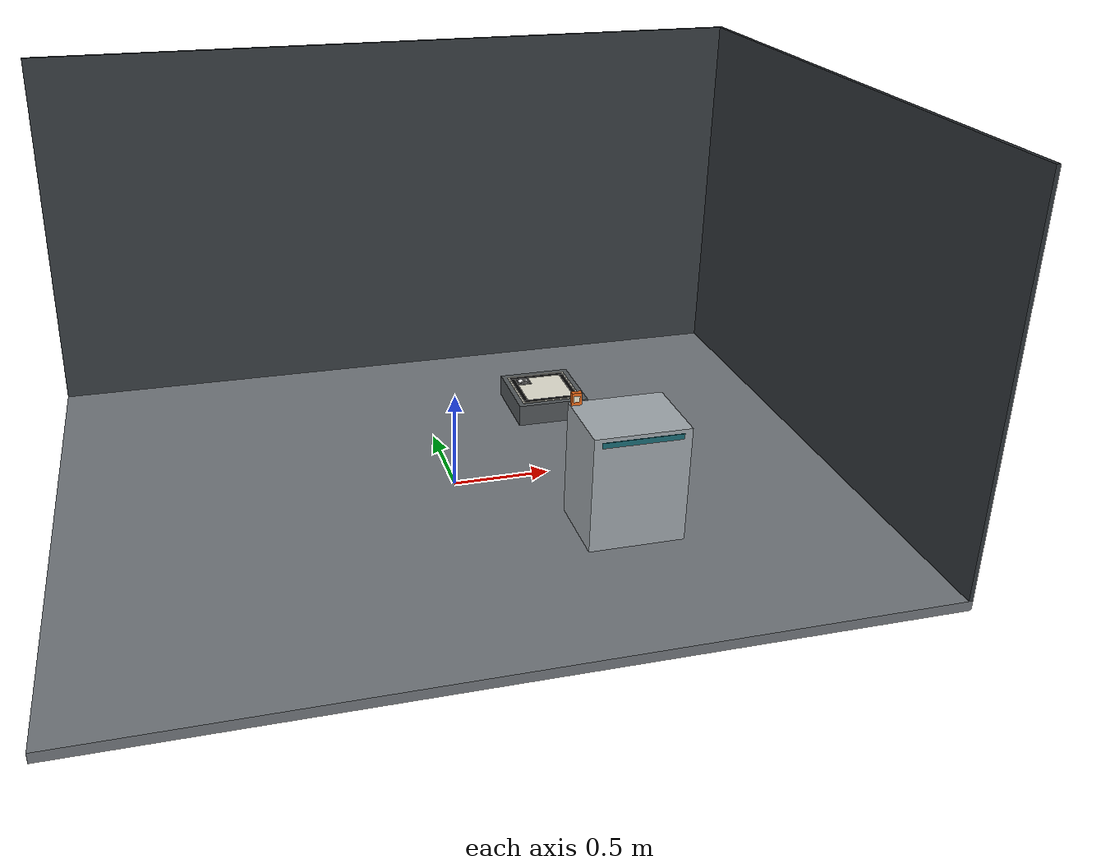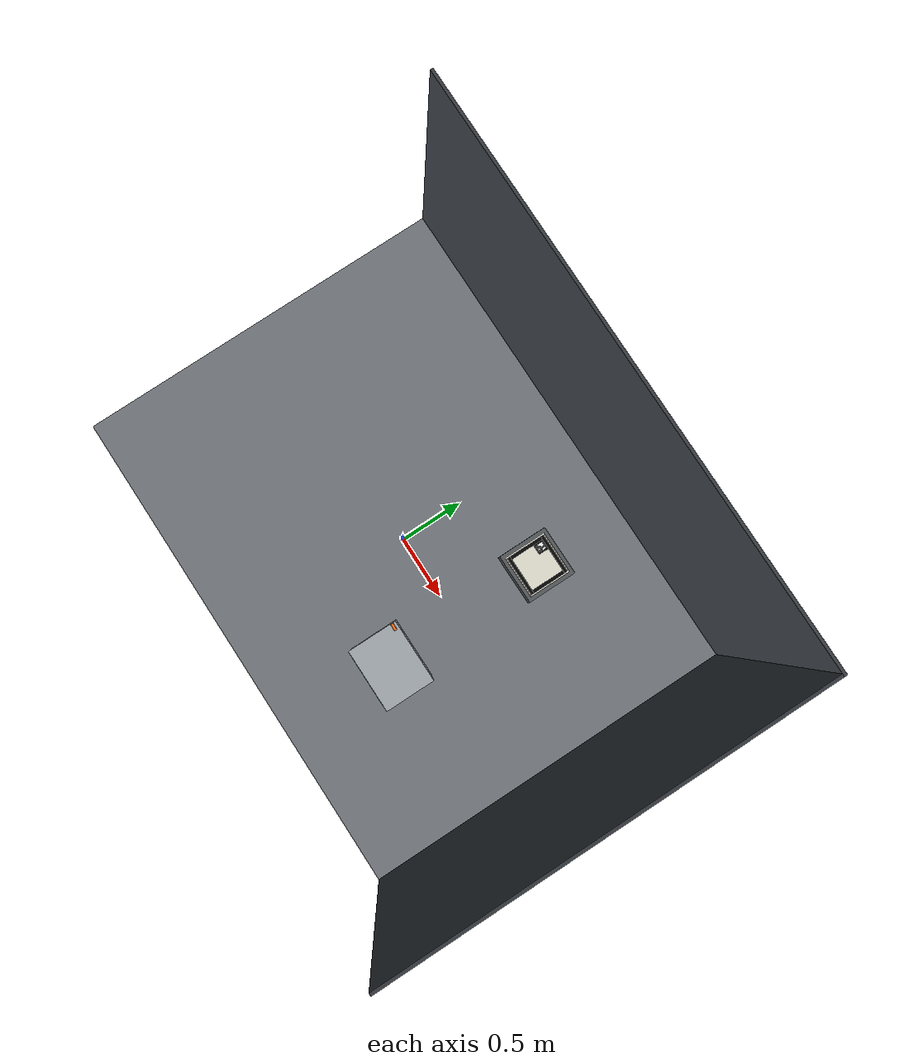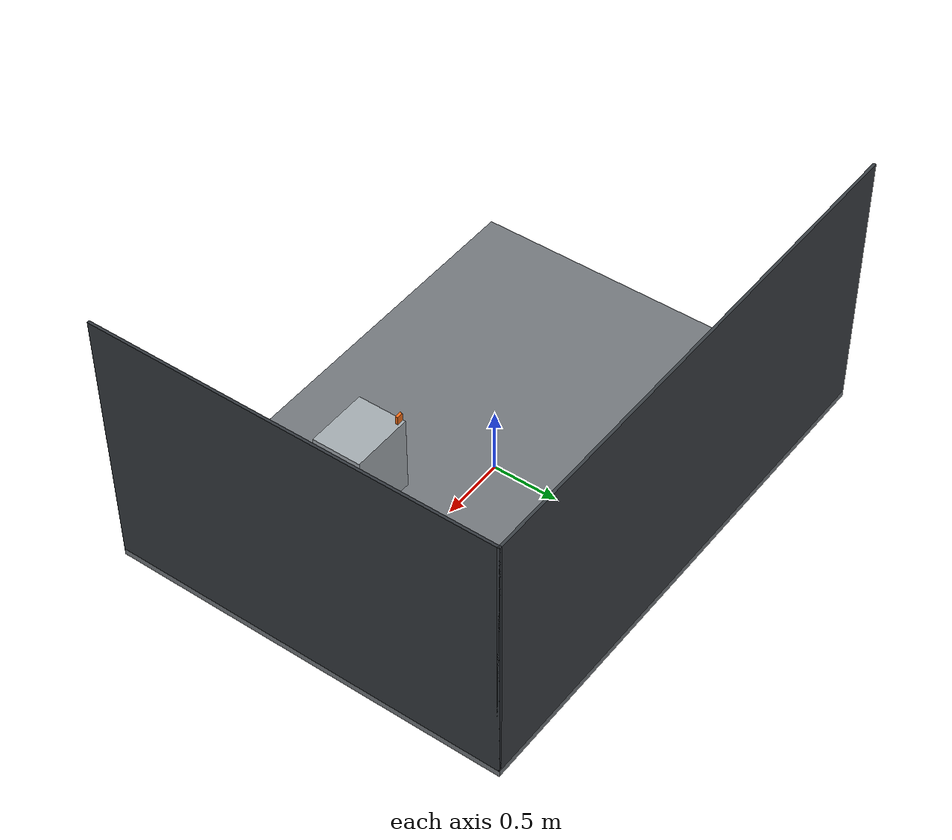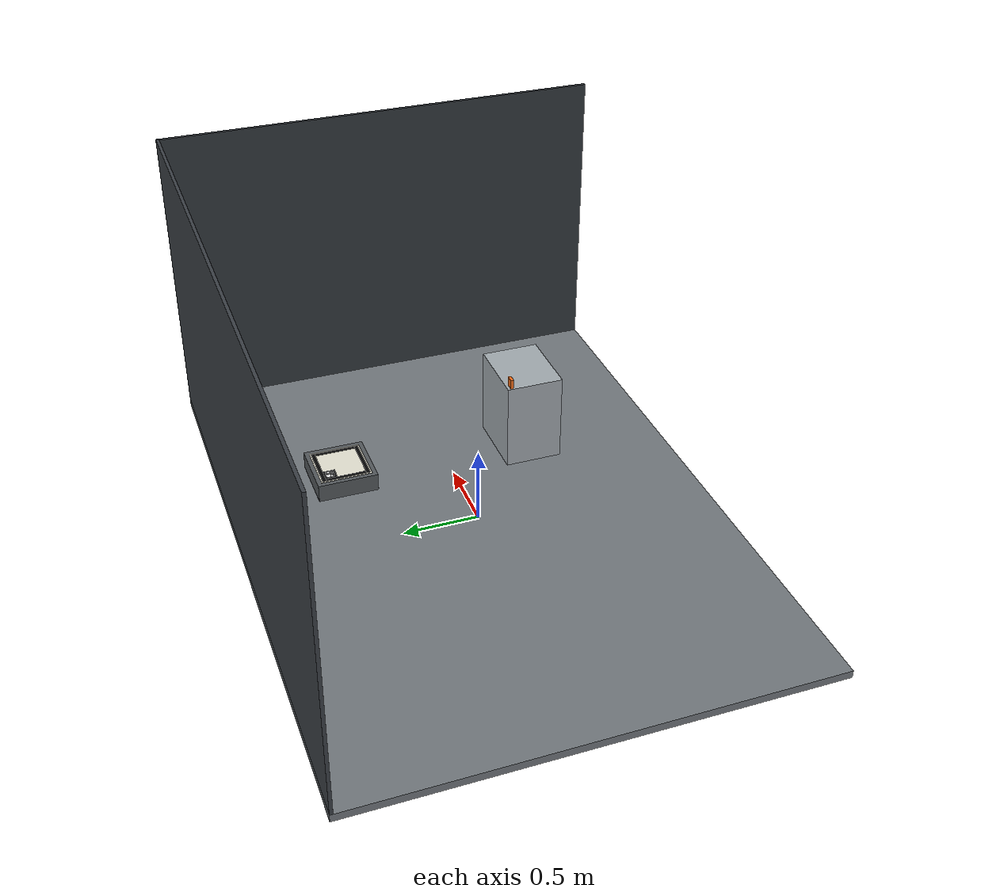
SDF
<?xml version="1.0"?>
<sdf version="1.8">
  <world name="lift_pick_place">
    <physics name="fast_stable" type="ignored">
      <max_step_size>0.001</max_step_size>
      <real_time_factor>1.0</real_time_factor>
    </physics>
    <gravity>0 0 -9.80665</gravity>

    <plugin filename="libignition-gazebo-physics-system.so" name="ignition::gazebo::systems::Physics"/>
    <plugin filename="libignition-gazebo-user-commands-system.so" name="ignition::gazebo::systems::UserCommands"/>
    <plugin filename="libignition-gazebo-scene-broadcaster-system.so" name="ignition::gazebo::systems::SceneBroadcaster"/>
    <plugin filename="libignition-gazebo-contact-system.so" name="ignition::gazebo::systems::Contact"/>

    <scene>
      <ambient>0.55 0.57 0.60 1</ambient>
      <background>0.075 0.085 0.10 1</background>
      <shadows>true</shadows>
      <grid>false</grid>
    </scene>

    <light name="soft_key" type="directional">
      <pose>-1.5 -1.0 3.5 0 0 0</pose>
      <cast_shadows>true</cast_shadows>
      <intensity>1.1</intensity>
      <direction>0.35 0.25 -0.90</direction>
      <diffuse>0.96 0.93 0.87 1</diffuse>
      <specular>0.20 0.20 0.20 1</specular>
    </light>
    <light name="soft_fill" type="point">
      <pose>1.0 1.4 2.5 0 0 0</pose>
      <cast_shadows>false</cast_shadows>
      <intensity>0.55</intensity>
      <diffuse>0.68 0.78 0.94 1</diffuse>
      <attenuation><range>8</range><constant>0.8</constant><linear>0.08</linear><quadratic>0.01</quadratic></attenuation>
    </light>

    <model name="studio_floor">
      <static>true</static>
      <link name="floor">
        <collision name="collision">
          <pose>0 0 -0.025 0 0 0</pose>
          <geometry><box><size>4.0 3.0 0.05</size></box></geometry>
          <surface><friction><ode><mu>0.9</mu><mu2>0.9</mu2></ode></friction></surface>
        </collision>
        <visual name="visual">
          <pose>0 0 -0.025 0 0 0</pose>
          <geometry><box><size>4.0 3.0 0.05</size></box></geometry>
          <material>
            <ambient>0.36 0.38 0.40 1</ambient>
            <diffuse>0.45 0.47 0.49 1</diffuse>
            <roughness><metal><roughness>0.82</roughness><metalness>0.0</metalness></metal></roughness>
          </material>
        </visual>
      </link>
    </model>

    <model name="backdrop">
      <static>true</static>
      <link name="walls">
        <visual name="back_wall"><pose>0 1.49 1.0 0 0 0</pose><geometry><box><size>4.0 0.02 2.0</size></box></geometry><material><ambient>0.18 0.20 0.22 1</ambient><diffuse>0.23 0.25 0.27 1</diffuse></material></visual>
        <visual name="side_wall"><pose>1.99 0 1.0 0 0 0</pose><geometry><box><size>0.02 3.0 2.0</size></box></geometry><material><ambient>0.15 0.17 0.19 1</ambient><diffuse>0.20 0.22 0.24 1</diffuse></material></visual>
      </link>
    </model>

    <include>
      <uri>model://high_plinth</uri>
      <name>pick_plinth</name>
      <pose>0.65 -0.56 0 0 0 0</pose>
    </include>
    <include>
      <uri>model://grasp_object</uri>
      <name>demo_object</name>
      <!-- At the near corner of the high platform so the base stays clear of
           the pedestal while the right arm approaches. -->
      <pose>0.50 -0.40 0.633 0 0 0</pose>
    </include>
    <include>
      <uri>model://aruco_drop_zone</uri>
      <name>drop_zone</name>
      <pose>0.70 0.72 0 0 0 0</pose>
    </include>

    <gui fullscreen="false">
      <plugin filename="GzScene3D" name="3D View">
        <gz-gui><title>Lift Pick and Place</title><property type="bool" key="showTitleBar">false</property><property type="string" key="state">docked</property></gz-gui>
        <engine>ogre2</engine>
        <scene>scene</scene>
        <ambient_light>0.55 0.57 0.60</ambient_light>
        <camera_pose>-2.65 -2.35 1.75 0 0.38 0.73</camera_pose>
      </plugin>
      <plugin filename="WorldControl" name="World control"><gz-gui><title>World control</title><property type="bool" key="showTitleBar">false</property><property type="bool" key="resizable">false</property><property type="double" key="height">72</property><property type="double" key="width">121</property><property type="double" key="z">1</property><property type="string" key="state">floating</property><anchors target="3D View"><line own="left" target="left"/><line own="bottom" target="bottom"/></anchors></gz-gui><play_pause>true</play_pause><step>true</step><start_paused>false</start_paused></plugin>
      <plugin filename="WorldStats" name="World stats"><gz-gui><title>World stats</title><property type="bool" key="showTitleBar">false</property><property type="bool" key="resizable">false</property><property type="double" key="height">110</property><property type="double" key="width">290</property><property type="double" key="z">1</property><property type="string" key="state">floating</property><anchors target="3D View"><line own="right" target="right"/><line own="bottom" target="bottom"/></anchors></gz-gui><sim_time>true</sim_time><real_time_factor>true</real_time_factor><iterations>true</iterations></plugin>
    </gui>
  </world>
</sdf>

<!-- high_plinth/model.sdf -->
<sdf version="1.8">
  <model name="high_plinth">
    <static>true</static>
    <link name="plinth">
      <!-- One 600 mm tall platform replaces the earlier two-step geometry.
           Its smaller footprint leaves room for the mobile base to approach. -->
      <collision name="platform_collision">
        <pose>0.06 0 0.30 0 0 0</pose>
        <geometry><box><size>0.48 0.38 0.60</size></box></geometry>
      </collision>
      <visual name="platform_visual">
        <pose>0.06 0 0.30 0 0 0</pose>
        <geometry><box><size>0.48 0.38 0.60</size></box></geometry>
        <material>
          <ambient>0.52 0.55 0.57 1</ambient>
          <diffuse>0.64 0.67 0.69 1</diffuse>
          <roughness><metal><roughness>0.70</roughness><metalness>0.02</metalness></metal></roughness>
        </material>
      </visual>
      <visual name="accent_strip">
        <pose>0.06 -0.191 0.565 0 0 0</pose>
        <geometry><box><size>0.40 0.004 0.028</size></box></geometry>
        <material><ambient>0.08 0.31 0.35 1</ambient><diffuse>0.10 0.43 0.47 1</diffuse></material>
      </visual>
    </link>
  </model>
</sdf>

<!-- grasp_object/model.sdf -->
<sdf version="1.8">
  <model name="grasp_object">
    <link name="object">
      <inertial>
        <mass>0.08</mass>
        <inertia>
          <ixx>0.00003083</ixx><iyy>0.00004483</iyy><izz>0.00001933</izz>
          <ixy>0</ixy><ixz>0</ixz><iyz>0</iyz>
        </inertia>
      </inertial>
      <collision name="collision">
        <geometry><box><size>0.050 0.020 0.065</size></box></geometry>
        <surface>
          <friction><ode><mu>1.2</mu><mu2>1.2</mu2></ode></friction>
          <contact><ode><kp>100000</kp><kd>10</kd></ode></contact>
        </surface>
      </collision>
      <visual name="body">
        <geometry><box><size>0.050 0.020 0.065</size></box></geometry>
        <material>
          <ambient>0.78 0.34 0.08 1</ambient>
          <diffuse>0.95 0.43 0.10 1</diffuse>
          <roughness><metal><roughness>0.62</roughness><metalness>0.0</metalness></metal></roughness>
        </material>
      </visual>
      <visual name="label">
        <pose>0 -0.0102 0 1.57079632679 0 0</pose>
        <geometry><box><size>0.030 0.032 0.0004</size></box></geometry>
        <material><ambient>0.92 0.90 0.80 1</ambient><diffuse>0.98 0.96 0.86 1</diffuse></material>
      </visual>
    </link>
  </model>
</sdf>

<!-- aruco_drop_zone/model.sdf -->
<sdf version="1.8">
  <model name="aruco_drop_zone">
    <static>true</static>
    <link name="target">
      <collision name="low_plinth_collision">
        <pose>0 0 0.06 0 0 0</pose>
        <geometry><box><size>0.40 0.40 0.12</size></box></geometry>
      </collision>
      <visual name="low_plinth">
        <pose>0 0 0.06 0 0 0</pose>
        <geometry><box><size>0.40 0.40 0.12</size></box></geometry>
        <material><ambient>0.26 0.28 0.29 1</ambient><diffuse>0.33 0.35 0.36 1</diffuse></material>
      </visual>
      <visual name="mat">
        <pose>0 0 0.1205 0 0 0</pose>
        <geometry><box><size>0.34 0.34 0.001</size></box></geometry>
        <material><ambient>0.82 0.81 0.76 1</ambient><diffuse>0.90 0.89 0.83 1</diffuse></material>
      </visual>
      <!-- Four 25 mm strips resemble matte black floor tape. They are visual
           only so MoveIt receives one clean target polygon, not four obstacles. -->
      <visual name="tape_n"><pose>0 0.1475 0.1212 0 0 0</pose><geometry><box><size>0.32 0.025 0.001</size></box></geometry><material><ambient>0.006 0.006 0.006 1</ambient><diffuse>0.012 0.012 0.012 1</diffuse></material></visual>
      <visual name="tape_s"><pose>0 -0.1475 0.1212 0 0 0</pose><geometry><box><size>0.32 0.025 0.001</size></box></geometry><material><ambient>0.006 0.006 0.006 1</ambient><diffuse>0.012 0.012 0.012 1</diffuse></material></visual>
      <visual name="tape_e"><pose>0.1475 0 0.1212 0 0 0</pose><geometry><box><size>0.025 0.27 0.001</size></box></geometry><material><ambient>0.006 0.006 0.006 1</ambient><diffuse>0.012 0.012 0.012 1</diffuse></material></visual>
      <visual name="tape_w"><pose>-0.1475 0 0.1212 0 0 0</pose><geometry><box><size>0.025 0.27 0.001</size></box></geometry><material><ambient>0.006 0.006 0.006 1</ambient><diffuse>0.012 0.012 0.012 1</diffuse></material></visual>
      <!-- ArUco DICT_4X4_50 marker id 23, represented as geometry so it stays
           crisp without an external texture and remains visible after placement. -->
      <visual name="marker_black"><pose>-0.095 0.095 0.1220 0 0 0</pose><geometry><box><size>0.080 0.080 0.001</size></box></geometry><material><ambient>0 0 0 1</ambient><diffuse>0 0 0 1</diffuse></material></visual>
      <visual name="marker_white"><pose>-0.095 0.095 0.1226 0 0 0</pose><geometry><box><size>0.056 0.056 0.001</size></box></geometry><material><ambient>1 1 1 1</ambient><diffuse>1 1 1 1</diffuse></material></visual>
      <visual name="marker_r1c3"><pose>-0.088 0.116 0.1232 0 0 0</pose><geometry><box><size>0.014 0.014 0.001</size></box></geometry><material><ambient>0 0 0 1</ambient><diffuse>0 0 0 1</diffuse></material></visual>
      <visual name="marker_r2c3"><pose>-0.088 0.102 0.1232 0 0 0</pose><geometry><box><size>0.014 0.014 0.001</size></box></geometry><material><ambient>0 0 0 1</ambient><diffuse>0 0 0 1</diffuse></material></visual>
      <visual name="marker_r3c2"><pose>-0.102 0.088 0.1232 0 0 0</pose><geometry><box><size>0.014 0.014 0.001</size></box></geometry><material><ambient>0 0 0 1</ambient><diffuse>0 0 0 1</diffuse></material></visual>
      <visual name="marker_r3c3"><pose>-0.088 0.088 0.1232 0 0 0</pose><geometry><box><size>0.014 0.014 0.001</size></box></geometry><material><ambient>0 0 0 1</ambient><diffuse>0 0 0 1</diffuse></material></visual>
      <visual name="marker_r3c4"><pose>-0.074 0.088 0.1232 0 0 0</pose><geometry><box><size>0.014 0.014 0.001</size></box></geometry><material><ambient>0 0 0 1</ambient><diffuse>0 0 0 1</diffuse></material></visual>
      <visual name="marker_r4c1"><pose>-0.116 0.074 0.1232 0 0 0</pose><geometry><box><size>0.014 0.014 0.001</size></box></geometry><material><ambient>0 0 0 1</ambient><diffuse>0 0 0 1</diffuse></material></visual>
      <visual name="marker_r4c2"><pose>-0.102 0.074 0.1232 0 0 0</pose><geometry><box><size>0.014 0.014 0.001</size></box></geometry><material><ambient>0 0 0 1</ambient><diffuse>0 0 0 1</diffuse></material></visual>
      <visual name="marker_r4c4"><pose>-0.074 0.074 0.1232 0 0 0</pose><geometry><box><size>0.014 0.014 0.001</size></box></geometry><material><ambient>0 0 0 1</ambient><diffuse>0 0 0 1</diffuse></material></visual>
    </link>
  </model>
</sdf>
